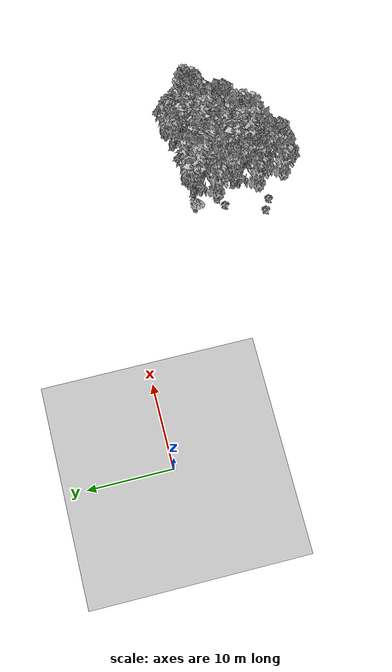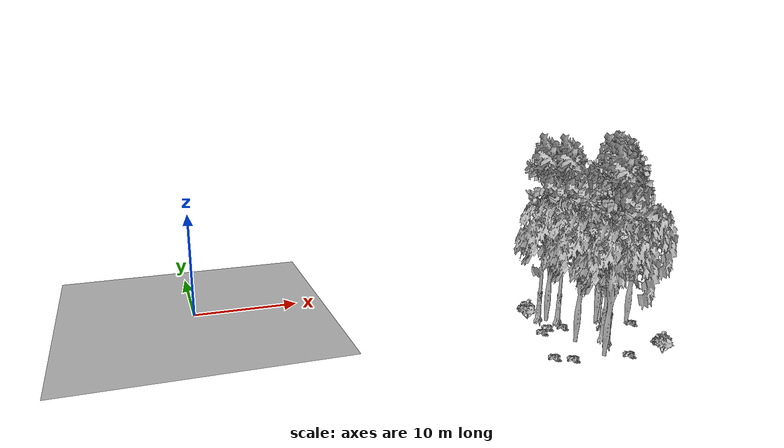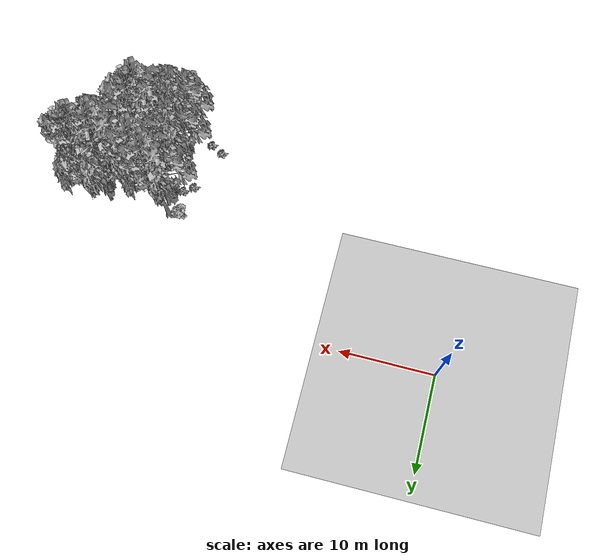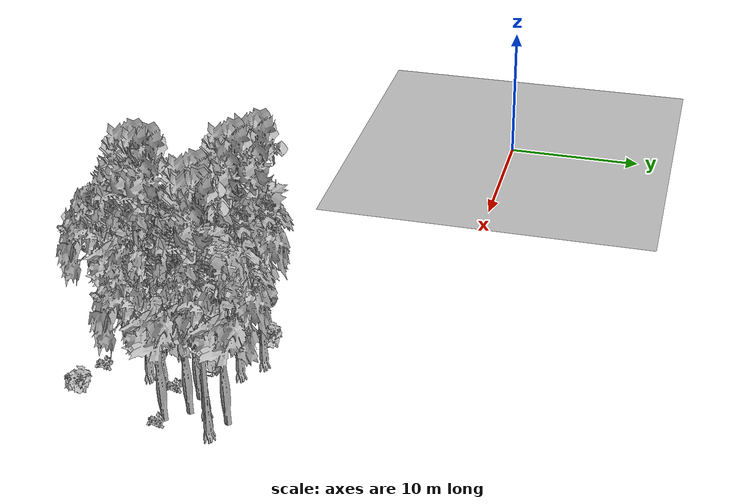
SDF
<sdf version="1.7">
 <world name="default">
  <model name="ground_plane">
   <static>1</static>
   <link name="link">
    <collision name="collision">
     <pose>-50 0 0 0 -0 0</pose>
     <geometry><plane><normal>0 0 1</normal><size>80 80</size></plane></geometry>
     <surface><contact><ode><min_depth>0.01</min_depth><max_vel>0</max_vel></ode></contact></surface>
    </collision>
    <visual name="grass">
     <cast_shadows>0</cast_shadows>
     <geometry>
      <mesh>
       <scale>0.46714285714285714 0.46714285714285714 0.1</scale>
       <uri>file://grass_plane/meshes/grass_plane.dae</uri>
      </mesh>
     </geometry>
    </visual>
   </link>
  </model>
  <model name="Tree 42">
   <static>1</static>
   <pose>32.017223839033335 -19.14383806338283 0 1.57079 -0 0</pose>
   <link name="link">
    <collision name="collision">
     <geometry><mesh><scale>3.5 5 3.5</scale><uri>model://tree_2/meshes/tree_2.obj</uri></mesh></geometry>
    </collision>
    <visual name="visual">
     <geometry><mesh><scale>3.5 5 3.5</scale><uri>model://tree_2/meshes/tree_2.obj</uri></mesh></geometry>
    </visual>
   </link>
  </model>
  <model name="Tree 55">
   <static>1</static>
   <pose>37.218600969641045 -12.914074528092101 0 1.57079 -0 0</pose>
   <link name="link">
    <collision name="collision">
     <geometry><mesh><scale>3.5 5 3.5</scale><uri>model://tree_2/meshes/tree_2.obj</uri></mesh></geometry>
    </collision>
    <visual name="visual">
     <geometry><mesh><scale>3.5 5 3.5</scale><uri>model://tree_2/meshes/tree_2.obj</uri></mesh></geometry>
    </visual>
   </link>
  </model>
  <model name="Tree 142">
   <static>1</static>
   <pose>38.17022621701899 -14.154340172147641 0 1.57079 -0 0</pose>
   <link name="link">
    <collision name="collision">
     <geometry><mesh><scale>3.5 5 3.5</scale><uri>model://tree_2/meshes/tree_2.obj</uri></mesh></geometry>
    </collision>
    <visual name="visual">
     <geometry><mesh><scale>3.5 5 3.5</scale><uri>model://tree_2/meshes/tree_2.obj</uri></mesh></geometry>
    </visual>
   </link>
  </model>
  <model name="Tree 192">
   <static>1</static>
   <pose>38.66610124954043 -11.214910983320756 0 1.57079 -0 0</pose>
   <link name="link">
    <collision name="collision">
     <geometry><mesh><scale>3.5 5 3.5</scale><uri>model://tree_9/meshes/tree_9.obj</uri></mesh></geometry>
    </collision>
    <visual name="visual">
     <geometry><mesh><scale>3.5 5 3.5</scale><uri>model://tree_9/meshes/tree_9.obj</uri></mesh></geometry>
    </visual>
   </link>
  </model>
  <model name="Tree 221">
   <static>1</static>
   <pose>34.38922936197265 -15.82035054363443 0 1.57079 -0 0</pose>
   <link name="link">
    <collision name="collision">
     <geometry><mesh><scale>3.5 5 3.5</scale><uri>model://tree_9/meshes/tree_9.obj</uri></mesh></geometry>
    </collision>
    <visual name="visual">
     <geometry><mesh><scale>3.5 5 3.5</scale><uri>model://tree_9/meshes/tree_9.obj</uri></mesh></geometry>
    </visual>
   </link>
  </model>
  <model name="Tree 227">
   <static>1</static>
   <pose>35.78970302950606 -12.84162888513361 0 1.57079 -0 0</pose>
   <link name="link">
    <collision name="collision">
     <geometry><mesh><scale>3.5 5 3.5</scale><uri>model://tree_2/meshes/tree_2.obj</uri></mesh></geometry>
    </collision>
    <visual name="visual">
     <geometry><mesh><scale>3.5 5 3.5</scale><uri>model://tree_2/meshes/tree_2.obj</uri></mesh></geometry>
    </visual>
   </link>
  </model>
  <model name="Tree 234">
   <static>1</static>
   <pose>34.157549796141765 -16.82875942726861 0 1.57079 -0 0</pose>
   <link name="link">
    <collision name="collision">
     <geometry><mesh><scale>3.5 5 3.5</scale><uri>model://tree_9/meshes/tree_9.obj</uri></mesh></geometry>
    </collision>
    <visual name="visual">
     <geometry><mesh><scale>3.5 5 3.5</scale><uri>model://tree_9/meshes/tree_9.obj</uri></mesh></geometry>
    </visual>
   </link>
  </model>
  <model name="Tree 240">
   <static>1</static>
   <pose>36.74689092714611 -12.095003818601207 0 1.57079 -0 0</pose>
   <link name="link">
    <collision name="collision">
     <geometry><mesh><scale>3.5 5 3.5</scale><uri>model://tree_9/meshes/tree_9.obj</uri></mesh></geometry>
    </collision>
    <visual name="visual">
     <geometry><mesh><scale>3.5 5 3.5</scale><uri>model://tree_9/meshes/tree_9.obj</uri></mesh></geometry>
    </visual>
   </link>
  </model>
  <model name="Tree 320">
   <static>1</static>
   <pose>32.71668017989066 -11.359754174554617 0 1.57079 -0 0</pose>
   <link name="link">
    <collision name="collision">
     <geometry><mesh><scale>3.5 5 3.5</scale><uri>model://tree_9/meshes/tree_9.obj</uri></mesh></geometry>
    </collision>
    <visual name="visual">
     <geometry><mesh><scale>3.5 5 3.5</scale><uri>model://tree_9/meshes/tree_9.obj</uri></mesh></geometry>
    </visual>
   </link>
  </model>
  <model name="Tree 327">
   <static>1</static>
   <pose>31.34345420089285 -16.027788386553333 0 1.57079 -0 0</pose>
   <link name="link">
    <collision name="collision">
     <geometry><mesh><scale>3.5 5 3.5</scale><uri>model://tree_2/meshes/tree_2.obj</uri></mesh></geometry>
    </collision>
    <visual name="visual">
     <geometry><mesh><scale>3.5 5 3.5</scale><uri>model://tree_2/meshes/tree_2.obj</uri></mesh></geometry>
    </visual>
   </link>
  </model>
  <model name="Tree 376">
   <static>1</static>
   <pose>38.32730661657364 -11.349129819121124 0 1.57079 -0 0</pose>
   <link name="link">
    <collision name="collision">
     <geometry><mesh><scale>3.5 5 3.5</scale><uri>model://tree_9/meshes/tree_9.obj</uri></mesh></geometry>
    </collision>
    <visual name="visual">
     <geometry><mesh><scale>3.5 5 3.5</scale><uri>model://tree_9/meshes/tree_9.obj</uri></mesh></geometry>
    </visual>
   </link>
  </model>
  <model name="Tree 457">
   <static>1</static>
   <pose>37.665552960970345 -10.362721939747104 0 1.57079 -0 0</pose>
   <link name="link">
    <collision name="collision">
     <geometry><mesh><scale>3.5 5 3.5</scale><uri>model://tree_2/meshes/tree_2.obj</uri></mesh></geometry>
    </collision>
    <visual name="visual">
     <geometry><mesh><scale>3.5 5 3.5</scale><uri>model://tree_2/meshes/tree_2.obj</uri></mesh></geometry>
    </visual>
   </link>
  </model>
  <model name="Tree 559">
   <static>1</static>
   <pose>31.28798673477135 -10.29900138090295 0 1.57079 -0 0</pose>
   <link name="link">
    <collision name="collision">
     <geometry><mesh><scale>3.5 5 3.5</scale><uri>model://tree_9/meshes/tree_9.obj</uri></mesh></geometry>
    </collision>
    <visual name="visual">
     <geometry><mesh><scale>3.5 5 3.5</scale><uri>model://tree_9/meshes/tree_9.obj</uri></mesh></geometry>
    </visual>
   </link>
  </model>
  <model name="Tree 638">
   <static>1</static>
   <pose>31.419381783810067 -11.305221843698021 0 1.57079 -0 0</pose>
   <link name="link">
    <collision name="collision">
     <geometry><mesh><scale>3.5 5 3.5</scale><uri>model://tree_2/meshes/tree_2.obj</uri></mesh></geometry>
    </collision>
    <visual name="visual">
     <geometry><mesh><scale>3.5 5 3.5</scale><uri>model://tree_2/meshes/tree_2.obj</uri></mesh></geometry>
    </visual>
   </link>
  </model>
  <model name="Bush 19">
   <static>1</static>
   <pose>35.143015363538396 -14.795596183950401 0 1.57079 -0 0</pose>
   <link name="link">
    <collision name="collision">
     <geometry><mesh><scale>2 2 2</scale><uri>model://bush_2/meshes/bush_2.obj</uri></mesh></geometry>
     <surface><contact><collide_without_contact>false</collide_without_contact></contact></surface>
    </collision>
    <visual name="visual">
     <geometry><mesh><scale>2 2 2</scale><uri>model://bush_2/meshes/bush_2.obj</uri></mesh></geometry>
    </visual>
   </link>
  </model>
  <model name="Bush 56">
   <static>1</static>
   <pose>33.99802371982524 -19.933038018681817 0 1.57079 -0 0</pose>
   <link name="link">
    <collision name="collision">
     <geometry><mesh><scale>2 2 2</scale><uri>model://bush_2/meshes/bush_2.obj</uri></mesh></geometry>
     <surface><contact><collide_without_contact>false</collide_without_contact></contact></surface>
    </collision>
    <visual name="visual">
     <geometry><mesh><scale>2 2 2</scale><uri>model://bush_2/meshes/bush_2.obj</uri></mesh></geometry>
    </visual>
   </link>
  </model>
  <model name="Bush 95">
   <static>1</static>
   <pose>29.96678070080243 -10.47656991184261 0 1.57079 -0 0</pose>
   <link name="link">
    <collision name="collision">
     <geometry><mesh><scale>2 2 2</scale><uri>model://bush_1/meshes/bush_1.obj</uri></mesh></geometry>
     <surface><contact><collide_without_contact>false</collide_without_contact></contact></surface>
    </collision>
    <visual name="visual">
     <geometry><mesh><scale>2 2 2</scale><uri>model://bush_1/meshes/bush_1.obj</uri></mesh></geometry>
    </visual>
   </link>
  </model>
  <model name="Bush 112">
   <static>1</static>
   <pose>31.872102145582673 -13.392881324213086 0 1.57079 -0 0</pose>
   <link name="link">
    <collision name="collision">
     <geometry><mesh><scale>2 2 2</scale><uri>model://bush_2/meshes/bush_2.obj</uri></mesh></geometry>
     <surface><contact><collide_without_contact>false</collide_without_contact></contact></surface>
    </collision>
    <visual name="visual">
     <geometry><mesh><scale>2 2 2</scale><uri>model://bush_2/meshes/bush_2.obj</uri></mesh></geometry>
    </visual>
   </link>
  </model>
  <model name="Bush 113">
   <static>1</static>
   <pose>37.083377247046215 -20.310165907700792 0 1.57079 -0 0</pose>
   <link name="link">
    <collision name="collision">
     <geometry><mesh><scale>2 2 2</scale><uri>model://bush_1/meshes/bush_1.obj</uri></mesh></geometry>
     <surface><contact><collide_without_contact>false</collide_without_contact></contact></surface>
    </collision>
    <visual name="visual">
     <geometry><mesh><scale>2 2 2</scale><uri>model://bush_1/meshes/bush_1.obj</uri></mesh></geometry>
    </visual>
   </link>
  </model>
  <model name="Bush 216">
   <static>1</static>
   <pose>29.47245874177554 -13.814170544227473 0 1.57079 -0 0</pose>
   <link name="link">
    <collision name="collision">
     <geometry><mesh><scale>2 2 2</scale><uri>model://bush_2/meshes/bush_2.obj</uri></mesh></geometry>
     <surface><contact><collide_without_contact>false</collide_without_contact></contact></surface>
    </collision>
    <visual name="visual">
     <geometry><mesh><scale>2 2 2</scale><uri>model://bush_2/meshes/bush_2.obj</uri></mesh></geometry>
    </visual>
   </link>
  </model>
  <model name="Bush 404">
   <static>1</static>
   <pose>30.47301708589376 -13.09735299868435 0 1.57079 -0 0</pose>
   <link name="link">
    <collision name="collision">
     <geometry><mesh><scale>2 2 2</scale><uri>model://bush_2/meshes/bush_2.obj</uri></mesh></geometry>
     <surface><contact><collide_without_contact>false</collide_without_contact></contact></surface>
    </collision>
    <visual name="visual">
     <geometry><mesh><scale>2 2 2</scale><uri>model://bush_2/meshes/bush_2.obj</uri></mesh></geometry>
    </visual>
   </link>
  </model>
  <model name="Bush 535">
   <static>1</static>
   <pose>27.691366936657346 -18.472190844387466 0 1.57079 -0 0</pose>
   <link name="link">
    <collision name="collision">
     <geometry><mesh><scale>2 2 2</scale><uri>model://bush_2/meshes/bush_2.obj</uri></mesh></geometry>
     <surface><contact><collide_without_contact>false</collide_without_contact></contact></surface>
    </collision>
    <visual name="visual">
     <geometry><mesh><scale>2 2 2</scale><uri>model://bush_2/meshes/bush_2.obj</uri></mesh></geometry>
    </visual>
   </link>
  </model>
  <model name="Bush 550">
   <static>1</static>
   <pose>29.02673451112527 -19.186773151502745 0 1.57079 -0 0</pose>
   <link name="link">
    <collision name="collision">
     <geometry><mesh><scale>2 2 2</scale><uri>model://bush_2/meshes/bush_2.obj</uri></mesh></geometry>
     <surface><contact><collide_without_contact>false</collide_without_contact></contact></surface>
    </collision>
    <visual name="visual">
     <geometry><mesh><scale>2 2 2</scale><uri>model://bush_2/meshes/bush_2.obj</uri></mesh></geometry>
    </visual>
   </link>
  </model>
  <model name="Bush 580">
   <static>1</static>
   <pose>38.50755636302475 -14.553689574648303 0 1.57079 -0 0</pose>
   <link name="link">
    <collision name="collision">
     <geometry><mesh><scale>2 2 2</scale><uri>model://bush_2/meshes/bush_2.obj</uri></mesh></geometry>
     <surface><contact><collide_without_contact>false</collide_without_contact></contact></surface>
    </collision>
    <visual name="visual">
     <geometry><mesh><scale>2 2 2</scale><uri>model://bush_2/meshes/bush_2.obj</uri></mesh></geometry>
    </visual>
   </link>
  </model>
 </world>
</sdf>
